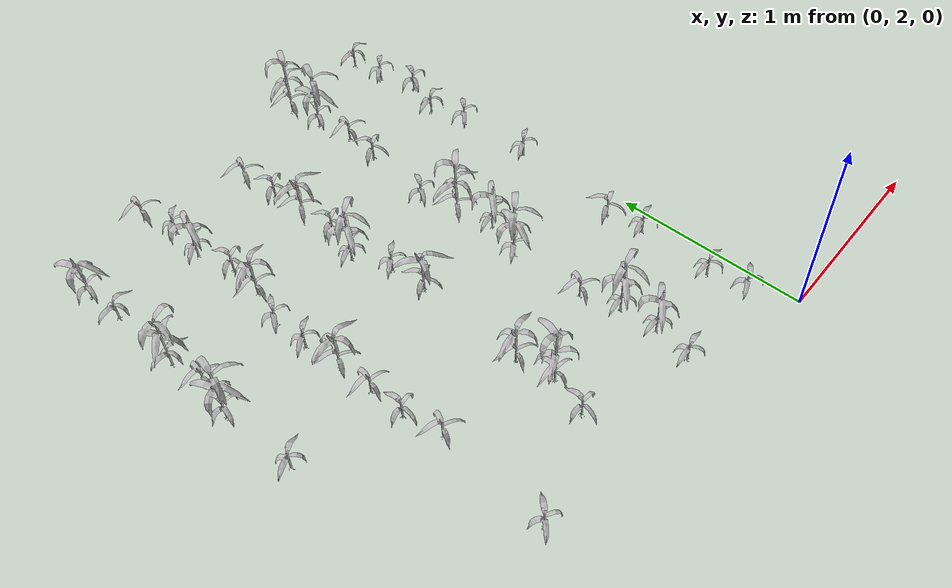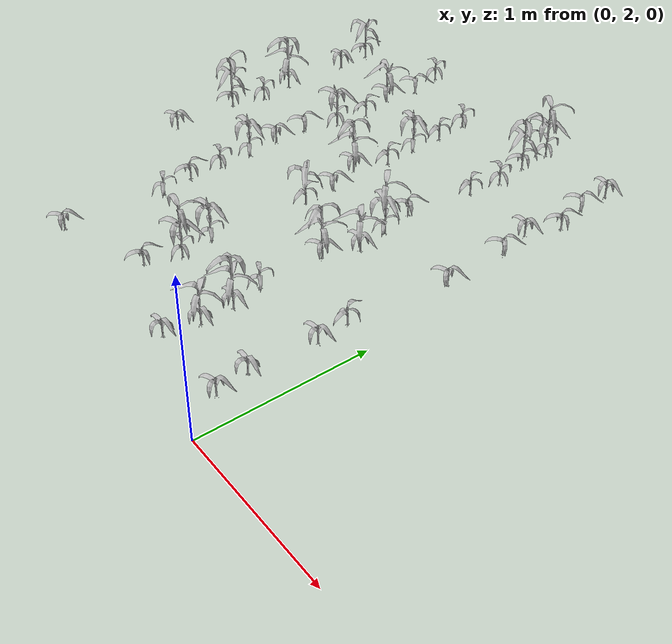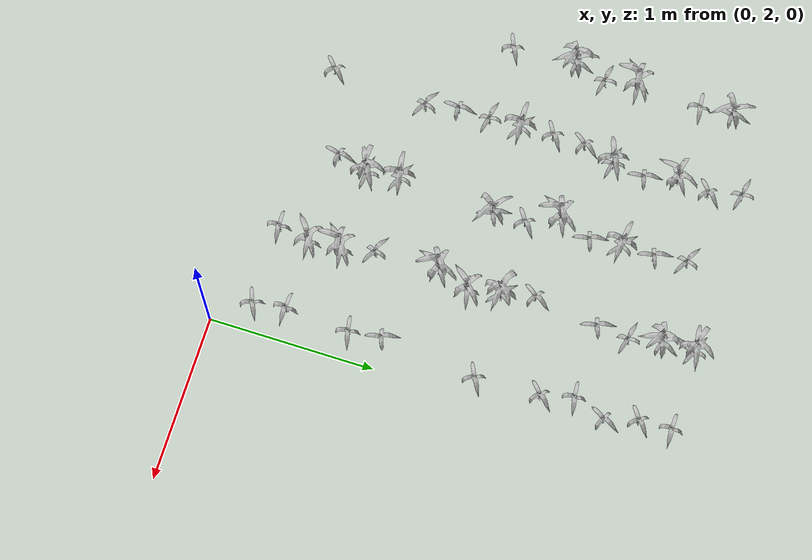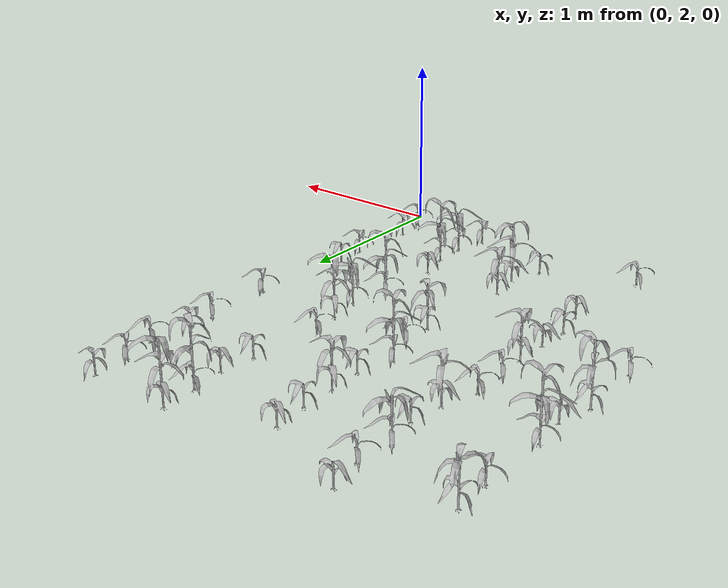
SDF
<sdf version="1.7">
 <world name="default">
  <model name="maize_-2.1164985900591105_3.1950000000000003">
   <static>1</static>
   <link name="link">
    <inertial>
     <mass>0.2</mass>
     <inertia>
      <ixx>0.166667</ixx>
      <ixy>0</ixy>
      <ixz>0</ixz>
      <iyy>0.166667</iyy>
      <iyz>0</iyz>
      <izz>0.166667</izz>
     </inertia>
    </inertial>
    <collision name="collision">
     <geometry><mesh><uri>model://corn_3/meshes/corn.dae</uri><scale>0.25 0.25 0.25</scale></mesh></geometry>
     <surface>
      <friction><ode><mu>0</mu><mu2>0</mu2></ode></friction>
      <contact><ode><kp>0</kp><kd>0</kd><max_vel>0</max_vel><min_depth>0.002</min_depth></ode></contact>
     </surface>
    </collision>
    <visual name="visual">
     <geometry><mesh><uri>model://corn_3/meshes/corn.dae</uri><scale>0.25 0.25 0.25</scale></mesh></geometry>
    </visual>
    <velocity_decay><linear>0</linear><angular>0</angular></velocity_decay>
   </link>
   <pose>-2.1165 3.195 0.05 0 -0 0.49287</pose>
  </model>
  <model name="maize_-2.1242683267938203_3.585">
   <static>1</static>
   <link name="link">
    <inertial>
     <mass>0.2</mass>
     <inertia>
      <ixx>0.166667</ixx>
      <ixy>0</ixy>
      <ixz>0</ixz>
      <iyy>0.166667</iyy>
      <iyz>0</iyz>
      <izz>0.166667</izz>
     </inertia>
    </inertial>
    <collision name="collision">
     <geometry><mesh><uri>model://corn_5/meshes/corn.dae</uri><scale>0.25 0.25 0.25</scale></mesh></geometry>
     <surface>
      <friction><ode><mu>0</mu><mu2>0</mu2></ode></friction>
      <contact><ode><kp>0</kp><kd>0</kd><max_vel>0</max_vel><min_depth>0.002</min_depth></ode></contact>
     </surface>
    </collision>
    <visual name="visual">
     <geometry><mesh><uri>model://corn_5/meshes/corn.dae</uri><scale>0.25 0.25 0.25</scale></mesh></geometry>
    </visual>
    <velocity_decay><linear>0</linear><angular>0</angular></velocity_decay>
   </link>
   <pose>-2.12427 3.585 0.05 0 -0 1.39524</pose>
  </model>
  <model name="maize_-2.0762162382212694_3.7800000000000002">
   <static>1</static>
   <link name="link">
    <inertial>
     <mass>0.2</mass>
     <inertia>
      <ixx>0.166667</ixx>
      <ixy>0</ixy>
      <ixz>0</ixz>
      <iyy>0.166667</iyy>
      <iyz>0</iyz>
      <izz>0.166667</izz>
     </inertia>
    </inertial>
    <collision name="collision">
     <geometry><mesh><uri>model://corn_3/meshes/corn.dae</uri><scale>0.25 0.25 0.25</scale></mesh></geometry>
     <surface>
      <friction><ode><mu>0</mu><mu2>0</mu2></ode></friction>
      <contact><ode><kp>0</kp><kd>0</kd><max_vel>0</max_vel><min_depth>0.002</min_depth></ode></contact>
     </surface>
    </collision>
    <visual name="visual">
     <geometry><mesh><uri>model://corn_3/meshes/corn.dae</uri><scale>0.25 0.25 0.25</scale></mesh></geometry>
    </visual>
    <velocity_decay><linear>0</linear><angular>0</angular></velocity_decay>
   </link>
   <pose>-2.07622 3.78 0.05 0 -0 2.99855</pose>
  </model>
  <model name="maize_-2.097647353204659_3.9750000000000005">
   <static>1</static>
   <link name="link">
    <inertial>
     <mass>0.2</mass>
     <inertia>
      <ixx>0.166667</ixx>
      <ixy>0</ixy>
      <ixz>0</ixz>
      <iyy>0.166667</iyy>
      <iyz>0</iyz>
      <izz>0.166667</izz>
     </inertia>
    </inertial>
    <collision name="collision">
     <geometry><mesh><uri>model://corn_5/meshes/corn.dae</uri><scale>0.25 0.25 0.25</scale></mesh></geometry>
     <surface>
      <friction><ode><mu>0</mu><mu2>0</mu2></ode></friction>
      <contact><ode><kp>0</kp><kd>0</kd><max_vel>0</max_vel><min_depth>0.002</min_depth></ode></contact>
     </surface>
    </collision>
    <visual name="visual">
     <geometry><mesh><uri>model://corn_5/meshes/corn.dae</uri><scale>0.25 0.25 0.25</scale></mesh></geometry>
    </visual>
    <velocity_decay><linear>0</linear><angular>0</angular></velocity_decay>
   </link>
   <pose>-2.09765 3.975 0.05 0 -0 0.084654</pose>
  </model>
  <model name="maize_-2.0860407775630843_4.365000000000001">
   <static>1</static>
   <link name="link">
    <inertial>
     <mass>0.2</mass>
     <inertia>
      <ixx>0.166667</ixx>
      <ixy>0</ixy>
      <ixz>0</ixz>
      <iyy>0.166667</iyy>
      <iyz>0</iyz>
      <izz>0.166667</izz>
     </inertia>
    </inertial>
    <collision name="collision">
     <geometry><mesh><uri>model://corn_3/meshes/corn.dae</uri><scale>0.25 0.25 0.25</scale></mesh></geometry>
     <surface>
      <friction><ode><mu>0</mu><mu2>0</mu2></ode></friction>
      <contact><ode><kp>0</kp><kd>0</kd><max_vel>0</max_vel><min_depth>0.002</min_depth></ode></contact>
     </surface>
    </collision>
    <visual name="visual">
     <geometry><mesh><uri>model://corn_3/meshes/corn.dae</uri><scale>0.25 0.25 0.25</scale></mesh></geometry>
    </visual>
    <velocity_decay><linear>0</linear><angular>0</angular></velocity_decay>
   </link>
   <pose>-2.08604 4.365 0.05 0 -0 0.176651</pose>
  </model>
  <model name="maize_-2.0910616269783078_4.56">
   <static>1</static>
   <link name="link">
    <inertial>
     <mass>0.2</mass>
     <inertia>
      <ixx>0.166667</ixx>
      <ixy>0</ixy>
      <ixz>0</ixz>
      <iyy>0.166667</iyy>
      <iyz>0</iyz>
      <izz>0.166667</izz>
     </inertia>
    </inertial>
    <collision name="collision">
     <geometry><mesh><uri>model://corn_4/meshes/corn.dae</uri><scale>0.25 0.25 0.25</scale></mesh></geometry>
     <surface>
      <friction><ode><mu>0</mu><mu2>0</mu2></ode></friction>
      <contact><ode><kp>0</kp><kd>0</kd><max_vel>0</max_vel><min_depth>0.002</min_depth></ode></contact>
     </surface>
    </collision>
    <visual name="visual">
     <geometry><mesh><uri>model://corn_4/meshes/corn.dae</uri><scale>0.25 0.25 0.25</scale></mesh></geometry>
    </visual>
    <velocity_decay><linear>0</linear><angular>0</angular></velocity_decay>
   </link>
   <pose>-2.09106 4.56 0.05 0 -0 1.4661</pose>
  </model>
  <model name="maize_-1.663134610293915_2.2200000000000006">
   <static>1</static>
   <link name="link">
    <inertial>
     <mass>0.2</mass>
     <inertia>
      <ixx>0.166667</ixx>
      <ixy>0</ixy>
      <ixz>0</ixz>
      <iyy>0.166667</iyy>
      <iyz>0</iyz>
      <izz>0.166667</izz>
     </inertia>
    </inertial>
    <collision name="collision">
     <geometry><mesh><uri>model://corn_3/meshes/corn.dae</uri><scale>0.25 0.25 0.25</scale></mesh></geometry>
     <surface>
      <friction><ode><mu>0</mu><mu2>0</mu2></ode></friction>
      <contact><ode><kp>0</kp><kd>0</kd><max_vel>0</max_vel><min_depth>0.002</min_depth></ode></contact>
     </surface>
    </collision>
    <visual name="visual">
     <geometry><mesh><uri>model://corn_3/meshes/corn.dae</uri><scale>0.25 0.25 0.25</scale></mesh></geometry>
    </visual>
    <velocity_decay><linear>0</linear><angular>0</angular></velocity_decay>
   </link>
   <pose>-1.66314 2.22 0.05 0 -0 0.833002</pose>
  </model>
  <model name="maize_-1.6085169609392773_2.8050000000000006">
   <static>1</static>
   <link name="link">
    <inertial>
     <mass>0.2</mass>
     <inertia>
      <ixx>0.166667</ixx>
      <ixy>0</ixy>
      <ixz>0</ixz>
      <iyy>0.166667</iyy>
      <iyz>0</iyz>
      <izz>0.166667</izz>
     </inertia>
    </inertial>
    <collision name="collision">
     <geometry><mesh><uri>model://corn_3/meshes/corn.dae</uri><scale>0.25 0.25 0.25</scale></mesh></geometry>
     <surface>
      <friction><ode><mu>0</mu><mu2>0</mu2></ode></friction>
      <contact><ode><kp>0</kp><kd>0</kd><max_vel>0</max_vel><min_depth>0.002</min_depth></ode></contact>
     </surface>
    </collision>
    <visual name="visual">
     <geometry><mesh><uri>model://corn_3/meshes/corn.dae</uri><scale>0.25 0.25 0.25</scale></mesh></geometry>
    </visual>
    <velocity_decay><linear>0</linear><angular>0</angular></velocity_decay>
   </link>
   <pose>-1.60852 2.805 0.05 0 -0 2.68107</pose>
  </model>
  <model name="maize_-1.648142192960806_3.000000000000001">
   <static>1</static>
   <link name="link">
    <inertial>
     <mass>0.2</mass>
     <inertia>
      <ixx>0.166667</ixx>
      <ixy>0</ixy>
      <ixz>0</ixz>
      <iyy>0.166667</iyy>
      <iyz>0</iyz>
      <izz>0.166667</izz>
     </inertia>
    </inertial>
    <collision name="collision">
     <geometry><mesh><uri>model://corn_3/meshes/corn.dae</uri><scale>0.25 0.25 0.25</scale></mesh></geometry>
     <surface>
      <friction><ode><mu>0</mu><mu2>0</mu2></ode></friction>
      <contact><ode><kp>0</kp><kd>0</kd><max_vel>0</max_vel><min_depth>0.002</min_depth></ode></contact>
     </surface>
    </collision>
    <visual name="visual">
     <geometry><mesh><uri>model://corn_3/meshes/corn.dae</uri><scale>0.25 0.25 0.25</scale></mesh></geometry>
    </visual>
    <velocity_decay><linear>0</linear><angular>0</angular></velocity_decay>
   </link>
   <pose>-1.64814 3 0.05 0 -0 1.54038</pose>
  </model>
  <model name="maize_-1.6412539485428397_3.1950000000000003">
   <static>1</static>
   <link name="link">
    <inertial>
     <mass>0.2</mass>
     <inertia>
      <ixx>0.166667</ixx>
      <ixy>0</ixy>
      <ixz>0</ixz>
      <iyy>0.166667</iyy>
      <iyz>0</iyz>
      <izz>0.166667</izz>
     </inertia>
    </inertial>
    <collision name="collision">
     <geometry><mesh><uri>model://corn_3/meshes/corn.dae</uri><scale>0.25 0.25 0.25</scale></mesh></geometry>
     <surface>
      <friction><ode><mu>0</mu><mu2>0</mu2></ode></friction>
      <contact><ode><kp>0</kp><kd>0</kd><max_vel>0</max_vel><min_depth>0.002</min_depth></ode></contact>
     </surface>
    </collision>
    <visual name="visual">
     <geometry><mesh><uri>model://corn_3/meshes/corn.dae</uri><scale>0.25 0.25 0.25</scale></mesh></geometry>
    </visual>
    <velocity_decay><linear>0</linear><angular>0</angular></velocity_decay>
   </link>
   <pose>-1.64125 3.195 0.05 0 -0 2.98103</pose>
  </model>
  <model name="maize_-1.6360870146533706_3.3899999999999997">
   <static>1</static>
   <link name="link">
    <inertial>
     <mass>0.2</mass>
     <inertia>
      <ixx>0.166667</ixx>
      <ixy>0</ixy>
      <ixz>0</ixz>
      <iyy>0.166667</iyy>
      <iyz>0</iyz>
      <izz>0.166667</izz>
     </inertia>
    </inertial>
    <collision name="collision">
     <geometry><mesh><uri>model://corn_4/meshes/corn.dae</uri><scale>0.25 0.25 0.25</scale></mesh></geometry>
     <surface>
      <friction><ode><mu>0</mu><mu2>0</mu2></ode></friction>
      <contact><ode><kp>0</kp><kd>0</kd><max_vel>0</max_vel><min_depth>0.002</min_depth></ode></contact>
     </surface>
    </collision>
    <visual name="visual">
     <geometry><mesh><uri>model://corn_4/meshes/corn.dae</uri><scale>0.25 0.25 0.25</scale></mesh></geometry>
    </visual>
    <velocity_decay><linear>0</linear><angular>0</angular></velocity_decay>
   </link>
   <pose>-1.63609 3.39 0.05 0 -0 2.63114</pose>
  </model>
  <model name="maize_-1.658192017509543_3.585">
   <static>1</static>
   <link name="link">
    <inertial>
     <mass>0.2</mass>
     <inertia>
      <ixx>0.166667</ixx>
      <ixy>0</ixy>
      <ixz>0</ixz>
      <iyy>0.166667</iyy>
      <iyz>0</iyz>
      <izz>0.166667</izz>
     </inertia>
    </inertial>
    <collision name="collision">
     <geometry><mesh><uri>model://corn_3/meshes/corn.dae</uri><scale>0.25 0.25 0.25</scale></mesh></geometry>
     <surface>
      <friction><ode><mu>0</mu><mu2>0</mu2></ode></friction>
      <contact><ode><kp>0</kp><kd>0</kd><max_vel>0</max_vel><min_depth>0.002</min_depth></ode></contact>
     </surface>
    </collision>
    <visual name="visual">
     <geometry><mesh><uri>model://corn_3/meshes/corn.dae</uri><scale>0.25 0.25 0.25</scale></mesh></geometry>
    </visual>
    <velocity_decay><linear>0</linear><angular>0</angular></velocity_decay>
   </link>
   <pose>-1.65819 3.585 0.05 0 -0 0.643898</pose>
  </model>
  <model name="maize_-1.6539194011626688_3.7800000000000002">
   <static>1</static>
   <link name="link">
    <inertial>
     <mass>0.2</mass>
     <inertia>
      <ixx>0.166667</ixx>
      <ixy>0</ixy>
      <ixz>0</ixz>
      <iyy>0.166667</iyy>
      <iyz>0</iyz>
      <izz>0.166667</izz>
     </inertia>
    </inertial>
    <collision name="collision">
     <geometry><mesh><uri>model://corn_3/meshes/corn.dae</uri><scale>0.25 0.25 0.25</scale></mesh></geometry>
     <surface>
      <friction><ode><mu>0</mu><mu2>0</mu2></ode></friction>
      <contact><ode><kp>0</kp><kd>0</kd><max_vel>0</max_vel><min_depth>0.002</min_depth></ode></contact>
     </surface>
    </collision>
    <visual name="visual">
     <geometry><mesh><uri>model://corn_3/meshes/corn.dae</uri><scale>0.25 0.25 0.25</scale></mesh></geometry>
    </visual>
    <velocity_decay><linear>0</linear><angular>0</angular></velocity_decay>
   </link>
   <pose>-1.65392 3.78 0.05 0 -0 1.00504</pose>
  </model>
  <model name="maize_-1.5894208410882344_3.9750000000000005">
   <static>1</static>
   <link name="link">
    <inertial>
     <mass>0.2</mass>
     <inertia>
      <ixx>0.166667</ixx>
      <ixy>0</ixy>
      <ixz>0</ixz>
      <iyy>0.166667</iyy>
      <iyz>0</iyz>
      <izz>0.166667</izz>
     </inertia>
    </inertial>
    <collision name="collision">
     <geometry><mesh><uri>model://corn_4/meshes/corn.dae</uri><scale>0.25 0.25 0.25</scale></mesh></geometry>
     <surface>
      <friction><ode><mu>0</mu><mu2>0</mu2></ode></friction>
      <contact><ode><kp>0</kp><kd>0</kd><max_vel>0</max_vel><min_depth>0.002</min_depth></ode></contact>
     </surface>
    </collision>
    <visual name="visual">
     <geometry><mesh><uri>model://corn_4/meshes/corn.dae</uri><scale>0.25 0.25 0.25</scale></mesh></geometry>
    </visual>
    <velocity_decay><linear>0</linear><angular>0</angular></velocity_decay>
   </link>
   <pose>-1.58942 3.975 0.05 0 -0 2.99807</pose>
  </model>
  <model name="maize_-1.5659149808013293_4.170000000000001">
   <static>1</static>
   <link name="link">
    <inertial>
     <mass>0.2</mass>
     <inertia>
      <ixx>0.166667</ixx>
      <ixy>0</ixy>
      <ixz>0</ixz>
      <iyy>0.166667</iyy>
      <iyz>0</iyz>
      <izz>0.166667</izz>
     </inertia>
    </inertial>
    <collision name="collision">
     <geometry><mesh><uri>model://corn_3/meshes/corn.dae</uri><scale>0.25 0.25 0.25</scale></mesh></geometry>
     <surface>
      <friction><ode><mu>0</mu><mu2>0</mu2></ode></friction>
      <contact><ode><kp>0</kp><kd>0</kd><max_vel>0</max_vel><min_depth>0.002</min_depth></ode></contact>
     </surface>
    </collision>
    <visual name="visual">
     <geometry><mesh><uri>model://corn_3/meshes/corn.dae</uri><scale>0.25 0.25 0.25</scale></mesh></geometry>
    </visual>
    <velocity_decay><linear>0</linear><angular>0</angular></velocity_decay>
   </link>
   <pose>-1.56591 4.17 0.05 0 -0 1.74223</pose>
  </model>
  <model name="maize_-1.6163731419069387_4.365000000000001">
   <static>1</static>
   <link name="link">
    <inertial>
     <mass>0.2</mass>
     <inertia>
      <ixx>0.166667</ixx>
      <ixy>0</ixy>
      <ixz>0</ixz>
      <iyy>0.166667</iyy>
      <iyz>0</iyz>
      <izz>0.166667</izz>
     </inertia>
    </inertial>
    <collision name="collision">
     <geometry><mesh><uri>model://corn_4/meshes/corn.dae</uri><scale>0.25 0.25 0.25</scale></mesh></geometry>
     <surface>
      <friction><ode><mu>0</mu><mu2>0</mu2></ode></friction>
      <contact><ode><kp>0</kp><kd>0</kd><max_vel>0</max_vel><min_depth>0.002</min_depth></ode></contact>
     </surface>
    </collision>
    <visual name="visual">
     <geometry><mesh><uri>model://corn_4/meshes/corn.dae</uri><scale>0.25 0.25 0.25</scale></mesh></geometry>
    </visual>
    <velocity_decay><linear>0</linear><angular>0</angular></velocity_decay>
   </link>
   <pose>-1.61637 4.365 0.05 0 -0 0.664564</pose>
  </model>
  <model name="maize_-1.5878479130295864_4.56">
   <static>1</static>
   <link name="link">
    <inertial>
     <mass>0.2</mass>
     <inertia>
      <ixx>0.166667</ixx>
      <ixy>0</ixy>
      <ixz>0</ixz>
      <iyy>0.166667</iyy>
      <iyz>0</iyz>
      <izz>0.166667</izz>
     </inertia>
    </inertial>
    <collision name="collision">
     <geometry><mesh><uri>model://corn_3/meshes/corn.dae</uri><scale>0.25 0.25 0.25</scale></mesh></geometry>
     <surface>
      <friction><ode><mu>0</mu><mu2>0</mu2></ode></friction>
      <contact><ode><kp>0</kp><kd>0</kd><max_vel>0</max_vel><min_depth>0.002</min_depth></ode></contact>
     </surface>
    </collision>
    <visual name="visual">
     <geometry><mesh><uri>model://corn_3/meshes/corn.dae</uri><scale>0.25 0.25 0.25</scale></mesh></geometry>
    </visual>
    <velocity_decay><linear>0</linear><angular>0</angular></velocity_decay>
   </link>
   <pose>-1.58785 4.56 0.05 0 -0 0.811355</pose>
  </model>
  <model name="maize_-1.6306166084370506_4.755">
   <static>1</static>
   <link name="link">
    <inertial>
     <mass>0.2</mass>
     <inertia>
      <ixx>0.166667</ixx>
      <ixy>0</ixy>
      <ixz>0</ixz>
      <iyy>0.166667</iyy>
      <iyz>0</iyz>
      <izz>0.166667</izz>
     </inertia>
    </inertial>
    <collision name="collision">
     <geometry><mesh><uri>model://corn_3/meshes/corn.dae</uri><scale>0.25 0.25 0.25</scale></mesh></geometry>
     <surface>
      <friction><ode><mu>0</mu><mu2>0</mu2></ode></friction>
      <contact><ode><kp>0</kp><kd>0</kd><max_vel>0</max_vel><min_depth>0.002</min_depth></ode></contact>
     </surface>
    </collision>
    <visual name="visual">
     <geometry><mesh><uri>model://corn_3/meshes/corn.dae</uri><scale>0.25 0.25 0.25</scale></mesh></geometry>
    </visual>
    <velocity_decay><linear>0</linear><angular>0</angular></velocity_decay>
   </link>
   <pose>-1.63062 4.755 0.05 0 -0 2.98924</pose>
  </model>
  <model name="maize_-1.1555213252441663_2.415">
   <static>1</static>
   <link name="link">
    <inertial>
     <mass>0.2</mass>
     <inertia>
      <ixx>0.166667</ixx>
      <ixy>0</ixy>
      <ixz>0</ixz>
      <iyy>0.166667</iyy>
      <iyz>0</iyz>
      <izz>0.166667</izz>
     </inertia>
    </inertial>
    <collision name="collision">
     <geometry><mesh><uri>model://corn_3/meshes/corn.dae</uri><scale>0.25 0.25 0.25</scale></mesh></geometry>
     <surface>
      <friction><ode><mu>0</mu><mu2>0</mu2></ode></friction>
      <contact><ode><kp>0</kp><kd>0</kd><max_vel>0</max_vel><min_depth>0.002</min_depth></ode></contact>
     </surface>
    </collision>
    <visual name="visual">
     <geometry><mesh><uri>model://corn_3/meshes/corn.dae</uri><scale>0.25 0.25 0.25</scale></mesh></geometry>
    </visual>
    <velocity_decay><linear>0</linear><angular>0</angular></velocity_decay>
   </link>
   <pose>-1.15552 2.415 0.05 0 -0 1.40679</pose>
  </model>
  <model name="maize_-1.0903606929288925_2.6100000000000003">
   <static>1</static>
   <link name="link">
    <inertial>
     <mass>0.2</mass>
     <inertia>
      <ixx>0.166667</ixx>
      <ixy>0</ixy>
      <ixz>0</ixz>
      <iyy>0.166667</iyy>
      <iyz>0</iyz>
      <izz>0.166667</izz>
     </inertia>
    </inertial>
    <collision name="collision">
     <geometry><mesh><uri>model://corn_5/meshes/corn.dae</uri><scale>0.25 0.25 0.25</scale></mesh></geometry>
     <surface>
      <friction><ode><mu>0</mu><mu2>0</mu2></ode></friction>
      <contact><ode><kp>0</kp><kd>0</kd><max_vel>0</max_vel><min_depth>0.002</min_depth></ode></contact>
     </surface>
    </collision>
    <visual name="visual">
     <geometry><mesh><uri>model://corn_5/meshes/corn.dae</uri><scale>0.25 0.25 0.25</scale></mesh></geometry>
    </visual>
    <velocity_decay><linear>0</linear><angular>0</angular></velocity_decay>
   </link>
   <pose>-1.09036 2.61 0.05 0 -0 3.08143</pose>
  </model>
  <model name="maize_-1.1209526965740497_2.8050000000000006">
   <static>1</static>
   <link name="link">
    <inertial>
     <mass>0.2</mass>
     <inertia>
      <ixx>0.166667</ixx>
      <ixy>0</ixy>
      <ixz>0</ixz>
      <iyy>0.166667</iyy>
      <iyz>0</iyz>
      <izz>0.166667</izz>
     </inertia>
    </inertial>
    <collision name="collision">
     <geometry><mesh><uri>model://corn_4/meshes/corn.dae</uri><scale>0.25 0.25 0.25</scale></mesh></geometry>
     <surface>
      <friction><ode><mu>0</mu><mu2>0</mu2></ode></friction>
      <contact><ode><kp>0</kp><kd>0</kd><max_vel>0</max_vel><min_depth>0.002</min_depth></ode></contact>
     </surface>
    </collision>
    <visual name="visual">
     <geometry><mesh><uri>model://corn_4/meshes/corn.dae</uri><scale>0.25 0.25 0.25</scale></mesh></geometry>
    </visual>
    <velocity_decay><linear>0</linear><angular>0</angular></velocity_decay>
   </link>
   <pose>-1.12095 2.805 0.05 0 -0 2.76857</pose>
  </model>
  <model name="maize_-1.0796736727257532_3.3899999999999997">
   <static>1</static>
   <link name="link">
    <inertial>
     <mass>0.2</mass>
     <inertia>
      <ixx>0.166667</ixx>
      <ixy>0</ixy>
      <ixz>0</ixz>
      <iyy>0.166667</iyy>
      <iyz>0</iyz>
      <izz>0.166667</izz>
     </inertia>
    </inertial>
    <collision name="collision">
     <geometry><mesh><uri>model://corn_4/meshes/corn.dae</uri><scale>0.25 0.25 0.25</scale></mesh></geometry>
     <surface>
      <friction><ode><mu>0</mu><mu2>0</mu2></ode></friction>
      <contact><ode><kp>0</kp><kd>0</kd><max_vel>0</max_vel><min_depth>0.002</min_depth></ode></contact>
     </surface>
    </collision>
    <visual name="visual">
     <geometry><mesh><uri>model://corn_4/meshes/corn.dae</uri><scale>0.25 0.25 0.25</scale></mesh></geometry>
    </visual>
    <velocity_decay><linear>0</linear><angular>0</angular></velocity_decay>
   </link>
   <pose>-1.07967 3.39 0.05 0 -0 1.90859</pose>
  </model>
  <model name="maize_-1.0887211426991072_3.585">
   <static>1</static>
   <link name="link">
    <inertial>
     <mass>0.2</mass>
     <inertia>
      <ixx>0.166667</ixx>
      <ixy>0</ixy>
      <ixz>0</ixz>
      <iyy>0.166667</iyy>
      <iyz>0</iyz>
      <izz>0.166667</izz>
     </inertia>
    </inertial>
    <collision name="collision">
     <geometry><mesh><uri>model://corn_3/meshes/corn.dae</uri><scale>0.25 0.25 0.25</scale></mesh></geometry>
     <surface>
      <friction><ode><mu>0</mu><mu2>0</mu2></ode></friction>
      <contact><ode><kp>0</kp><kd>0</kd><max_vel>0</max_vel><min_depth>0.002</min_depth></ode></contact>
     </surface>
    </collision>
    <visual name="visual">
     <geometry><mesh><uri>model://corn_3/meshes/corn.dae</uri><scale>0.25 0.25 0.25</scale></mesh></geometry>
    </visual>
    <velocity_decay><linear>0</linear><angular>0</angular></velocity_decay>
   </link>
   <pose>-1.08872 3.585 0.05 0 -0 0.697835</pose>
  </model>
  <model name="maize_-1.1659887740004984_3.7800000000000002">
   <static>1</static>
   <link name="link">
    <inertial>
     <mass>0.2</mass>
     <inertia>
      <ixx>0.166667</ixx>
      <ixy>0</ixy>
      <ixz>0</ixz>
      <iyy>0.166667</iyy>
      <iyz>0</iyz>
      <izz>0.166667</izz>
     </inertia>
    </inertial>
    <collision name="collision">
     <geometry><mesh><uri>model://corn_5/meshes/corn.dae</uri><scale>0.25 0.25 0.25</scale></mesh></geometry>
     <surface>
      <friction><ode><mu>0</mu><mu2>0</mu2></ode></friction>
      <contact><ode><kp>0</kp><kd>0</kd><max_vel>0</max_vel><min_depth>0.002</min_depth></ode></contact>
     </surface>
    </collision>
    <visual name="visual">
     <geometry><mesh><uri>model://corn_5/meshes/corn.dae</uri><scale>0.25 0.25 0.25</scale></mesh></geometry>
    </visual>
    <velocity_decay><linear>0</linear><angular>0</angular></velocity_decay>
   </link>
   <pose>-1.16599 3.78 0.05 0 -0 0.441565</pose>
  </model>
  <model name="maize_-1.101138651092926_3.9750000000000005">
   <static>1</static>
   <link name="link">
    <inertial>
     <mass>0.2</mass>
     <inertia>
      <ixx>0.166667</ixx>
      <ixy>0</ixy>
      <ixz>0</ixz>
      <iyy>0.166667</iyy>
      <iyz>0</iyz>
      <izz>0.166667</izz>
     </inertia>
    </inertial>
    <collision name="collision">
     <geometry><mesh><uri>model://corn_3/meshes/corn.dae</uri><scale>0.25 0.25 0.25</scale></mesh></geometry>
     <surface>
      <friction><ode><mu>0</mu><mu2>0</mu2></ode></friction>
      <contact><ode><kp>0</kp><kd>0</kd><max_vel>0</max_vel><min_depth>0.002</min_depth></ode></contact>
     </surface>
    </collision>
    <visual name="visual">
     <geometry><mesh><uri>model://corn_3/meshes/corn.dae</uri><scale>0.25 0.25 0.25</scale></mesh></geometry>
    </visual>
    <velocity_decay><linear>0</linear><angular>0</angular></velocity_decay>
   </link>
   <pose>-1.10114 3.975 0.05 0 -0 1.82091</pose>
  </model>
  <model name="maize_-1.1143127079378858_4.170000000000001">
   <static>1</static>
   <link name="link">
    <inertial>
     <mass>0.2</mass>
     <inertia>
      <ixx>0.166667</ixx>
      <ixy>0</ixy>
      <ixz>0</ixz>
      <iyy>0.166667</iyy>
      <iyz>0</iyz>
      <izz>0.166667</izz>
     </inertia>
    </inertial>
    <collision name="collision">
     <geometry><mesh><uri>model://corn_4/meshes/corn.dae</uri><scale>0.25 0.25 0.25</scale></mesh></geometry>
     <surface>
      <friction><ode><mu>0</mu><mu2>0</mu2></ode></friction>
      <contact><ode><kp>0</kp><kd>0</kd><max_vel>0</max_vel><min_depth>0.002</min_depth></ode></contact>
     </surface>
    </collision>
    <visual name="visual">
     <geometry><mesh><uri>model://corn_4/meshes/corn.dae</uri><scale>0.25 0.25 0.25</scale></mesh></geometry>
    </visual>
    <velocity_decay><linear>0</linear><angular>0</angular></velocity_decay>
   </link>
   <pose>-1.11431 4.17 0.05 0 -0 2.48841</pose>
  </model>
  <model name="maize_-1.1170687580673233_4.365000000000001">
   <static>1</static>
   <link name="link">
    <inertial>
     <mass>0.2</mass>
     <inertia>
      <ixx>0.166667</ixx>
      <ixy>0</ixy>
      <ixz>0</ixz>
      <iyy>0.166667</iyy>
      <iyz>0</iyz>
      <izz>0.166667</izz>
     </inertia>
    </inertial>
    <collision name="collision">
     <geometry><mesh><uri>model://corn_3/meshes/corn.dae</uri><scale>0.25 0.25 0.25</scale></mesh></geometry>
     <surface>
      <friction><ode><mu>0</mu><mu2>0</mu2></ode></friction>
      <contact><ode><kp>0</kp><kd>0</kd><max_vel>0</max_vel><min_depth>0.002</min_depth></ode></contact>
     </surface>
    </collision>
    <visual name="visual">
     <geometry><mesh><uri>model://corn_3/meshes/corn.dae</uri><scale>0.25 0.25 0.25</scale></mesh></geometry>
    </visual>
    <velocity_decay><linear>0</linear><angular>0</angular></velocity_decay>
   </link>
   <pose>-1.11707 4.365 0.05 0 -0 1.84388</pose>
  </model>
  <model name="maize_-1.1387523661591759_4.56">
   <static>1</static>
   <link name="link">
    <inertial>
     <mass>0.2</mass>
     <inertia>
      <ixx>0.166667</ixx>
      <ixy>0</ixy>
      <ixz>0</ixz>
      <iyy>0.166667</iyy>
      <iyz>0</iyz>
      <izz>0.166667</izz>
     </inertia>
    </inertial>
    <collision name="collision">
     <geometry><mesh><uri>model://corn_3/meshes/corn.dae</uri><scale>0.25 0.25 0.25</scale></mesh></geometry>
     <surface>
      <friction><ode><mu>0</mu><mu2>0</mu2></ode></friction>
      <contact><ode><kp>0</kp><kd>0</kd><max_vel>0</max_vel><min_depth>0.002</min_depth></ode></contact>
     </surface>
    </collision>
    <visual name="visual">
     <geometry><mesh><uri>model://corn_3/meshes/corn.dae</uri><scale>0.25 0.25 0.25</scale></mesh></geometry>
    </visual>
    <velocity_decay><linear>0</linear><angular>0</angular></velocity_decay>
   </link>
   <pose>-1.13875 4.56 0.05 0 -0 2.70622</pose>
  </model>
  <model name="maize_-0.6314867450629807_2.2200000000000006">
   <static>1</static>
   <link name="link">
    <inertial>
     <mass>0.2</mass>
     <inertia>
      <ixx>0.166667</ixx>
      <ixy>0</ixy>
      <ixz>0</ixz>
      <iyy>0.166667</iyy>
      <iyz>0</iyz>
      <izz>0.166667</izz>
     </inertia>
    </inertial>
    <collision name="collision">
     <geometry><mesh><uri>model://corn_3/meshes/corn.dae</uri><scale>0.25 0.25 0.25</scale></mesh></geometry>
     <surface>
      <friction><ode><mu>0</mu><mu2>0</mu2></ode></friction>
      <contact><ode><kp>0</kp><kd>0</kd><max_vel>0</max_vel><min_depth>0.002</min_depth></ode></contact>
     </surface>
    </collision>
    <visual name="visual">
     <geometry><mesh><uri>model://corn_3/meshes/corn.dae</uri><scale>0.25 0.25 0.25</scale></mesh></geometry>
    </visual>
    <velocity_decay><linear>0</linear><angular>0</angular></velocity_decay>
   </link>
   <pose>-0.631487 2.22 0.05 0 -0 0.14985</pose>
  </model>
  <model name="maize_-0.5920018235089026_2.415">
   <static>1</static>
   <link name="link">
    <inertial>
     <mass>0.2</mass>
     <inertia>
      <ixx>0.166667</ixx>
      <ixy>0</ixy>
      <ixz>0</ixz>
      <iyy>0.166667</iyy>
      <iyz>0</iyz>
      <izz>0.166667</izz>
     </inertia>
    </inertial>
    <collision name="collision">
     <geometry><mesh><uri>model://corn_4/meshes/corn.dae</uri><scale>0.25 0.25 0.25</scale></mesh></geometry>
     <surface>
      <friction><ode><mu>0</mu><mu2>0</mu2></ode></friction>
      <contact><ode><kp>0</kp><kd>0</kd><max_vel>0</max_vel><min_depth>0.002</min_depth></ode></contact>
     </surface>
    </collision>
    <visual name="visual">
     <geometry><mesh><uri>model://corn_4/meshes/corn.dae</uri><scale>0.25 0.25 0.25</scale></mesh></geometry>
    </visual>
    <velocity_decay><linear>0</linear><angular>0</angular></velocity_decay>
   </link>
   <pose>-0.592002 2.415 0.05 0 -0 0.061608</pose>
  </model>
  <model name="maize_-0.5978591052711811_2.6100000000000003">
   <static>1</static>
   <link name="link">
    <inertial>
     <mass>0.2</mass>
     <inertia>
      <ixx>0.166667</ixx>
      <ixy>0</ixy>
      <ixz>0</ixz>
      <iyy>0.166667</iyy>
      <iyz>0</iyz>
      <izz>0.166667</izz>
     </inertia>
    </inertial>
    <collision name="collision">
     <geometry><mesh><uri>model://corn_5/meshes/corn.dae</uri><scale>0.25 0.25 0.25</scale></mesh></geometry>
     <surface>
      <friction><ode><mu>0</mu><mu2>0</mu2></ode></friction>
      <contact><ode><kp>0</kp><kd>0</kd><max_vel>0</max_vel><min_depth>0.002</min_depth></ode></contact>
     </surface>
    </collision>
    <visual name="visual">
     <geometry><mesh><uri>model://corn_5/meshes/corn.dae</uri><scale>0.25 0.25 0.25</scale></mesh></geometry>
    </visual>
    <velocity_decay><linear>0</linear><angular>0</angular></velocity_decay>
   </link>
   <pose>-0.597859 2.61 0.05 0 -0 0.148231</pose>
  </model>
  <model name="maize_-0.6501387656907339_2.8050000000000006">
   <static>1</static>
   <link name="link">
    <inertial>
     <mass>0.2</mass>
     <inertia>
      <ixx>0.166667</ixx>
      <ixy>0</ixy>
      <ixz>0</ixz>
      <iyy>0.166667</iyy>
      <iyz>0</iyz>
      <izz>0.166667</izz>
     </inertia>
    </inertial>
    <collision name="collision">
     <geometry><mesh><uri>model://corn_3/meshes/corn.dae</uri><scale>0.25 0.25 0.25</scale></mesh></geometry>
     <surface>
      <friction><ode><mu>0</mu><mu2>0</mu2></ode></friction>
      <contact><ode><kp>0</kp><kd>0</kd><max_vel>0</max_vel><min_depth>0.002</min_depth></ode></contact>
     </surface>
    </collision>
    <visual name="visual">
     <geometry><mesh><uri>model://corn_3/meshes/corn.dae</uri><scale>0.25 0.25 0.25</scale></mesh></geometry>
    </visual>
    <velocity_decay><linear>0</linear><angular>0</angular></velocity_decay>
   </link>
   <pose>-0.650139 2.805 0.05 0 -0 2.70994</pose>
  </model>
  <model name="maize_-0.6537903981904519_3.1950000000000003">
   <static>1</static>
   <link name="link">
    <inertial>
     <mass>0.2</mass>
     <inertia>
      <ixx>0.166667</ixx>
      <ixy>0</ixy>
      <ixz>0</ixz>
      <iyy>0.166667</iyy>
      <iyz>0</iyz>
      <izz>0.166667</izz>
     </inertia>
    </inertial>
    <collision name="collision">
     <geometry><mesh><uri>model://corn_5/meshes/corn.dae</uri><scale>0.25 0.25 0.25</scale></mesh></geometry>
     <surface>
      <friction><ode><mu>0</mu><mu2>0</mu2></ode></friction>
      <contact><ode><kp>0</kp><kd>0</kd><max_vel>0</max_vel><min_depth>0.002</min_depth></ode></contact>
     </surface>
    </collision>
    <visual name="visual">
     <geometry><mesh><uri>model://corn_5/meshes/corn.dae</uri><scale>0.25 0.25 0.25</scale></mesh></geometry>
    </visual>
    <velocity_decay><linear>0</linear><angular>0</angular></velocity_decay>
   </link>
   <pose>-0.65379 3.195 0.05 0 -0 0.645604</pose>
  </model>
  <model name="maize_-0.5839129292076466_3.3899999999999997">
   <static>1</static>
   <link name="link">
    <inertial>
     <mass>0.2</mass>
     <inertia>
      <ixx>0.166667</ixx>
      <ixy>0</ixy>
      <ixz>0</ixz>
      <iyy>0.166667</iyy>
      <iyz>0</iyz>
      <izz>0.166667</izz>
     </inertia>
    </inertial>
    <collision name="collision">
     <geometry><mesh><uri>model://corn_4/meshes/corn.dae</uri><scale>0.25 0.25 0.25</scale></mesh></geometry>
     <surface>
      <friction><ode><mu>0</mu><mu2>0</mu2></ode></friction>
      <contact><ode><kp>0</kp><kd>0</kd><max_vel>0</max_vel><min_depth>0.002</min_depth></ode></contact>
     </surface>
    </collision>
    <visual name="visual">
     <geometry><mesh><uri>model://corn_4/meshes/corn.dae</uri><scale>0.25 0.25 0.25</scale></mesh></geometry>
    </visual>
    <velocity_decay><linear>0</linear><angular>0</angular></velocity_decay>
   </link>
   <pose>-0.583913 3.39 0.05 0 -0 0.234294</pose>
  </model>
  <model name="maize_-0.621016667286145_3.585">
   <static>1</static>
   <link name="link">
    <inertial>
     <mass>0.2</mass>
     <inertia>
      <ixx>0.166667</ixx>
      <ixy>0</ixy>
      <ixz>0</ixz>
      <iyy>0.166667</iyy>
      <iyz>0</iyz>
      <izz>0.166667</izz>
     </inertia>
    </inertial>
    <collision name="collision">
     <geometry><mesh><uri>model://corn_5/meshes/corn.dae</uri><scale>0.25 0.25 0.25</scale></mesh></geometry>
     <surface>
      <friction><ode><mu>0</mu><mu2>0</mu2></ode></friction>
      <contact><ode><kp>0</kp><kd>0</kd><max_vel>0</max_vel><min_depth>0.002</min_depth></ode></contact>
     </surface>
    </collision>
    <visual name="visual">
     <geometry><mesh><uri>model://corn_5/meshes/corn.dae</uri><scale>0.25 0.25 0.25</scale></mesh></geometry>
    </visual>
    <velocity_decay><linear>0</linear><angular>0</angular></velocity_decay>
   </link>
   <pose>-0.621017 3.585 0.05 0 -0 2.42292</pose>
  </model>
  <model name="maize_-0.6702341685313563_3.7800000000000002">
   <static>1</static>
   <link name="link">
    <inertial>
     <mass>0.2</mass>
     <inertia>
      <ixx>0.166667</ixx>
      <ixy>0</ixy>
      <ixz>0</ixz>
      <iyy>0.166667</iyy>
      <iyz>0</iyz>
      <izz>0.166667</izz>
     </inertia>
    </inertial>
    <collision name="collision">
     <geometry><mesh><uri>model://corn_3/meshes/corn.dae</uri><scale>0.25 0.25 0.25</scale></mesh></geometry>
     <surface>
      <friction><ode><mu>0</mu><mu2>0</mu2></ode></friction>
      <contact><ode><kp>0</kp><kd>0</kd><max_vel>0</max_vel><min_depth>0.002</min_depth></ode></contact>
     </surface>
    </collision>
    <visual name="visual">
     <geometry><mesh><uri>model://corn_3/meshes/corn.dae</uri><scale>0.25 0.25 0.25</scale></mesh></geometry>
    </visual>
    <velocity_decay><linear>0</linear><angular>0</angular></velocity_decay>
   </link>
   <pose>-0.670234 3.78 0.05 0 -0 1.04523</pose>
  </model>
  <model name="maize_-0.6094295401622659_4.170000000000001">
   <static>1</static>
   <link name="link">
    <inertial>
     <mass>0.2</mass>
     <inertia>
      <ixx>0.166667</ixx>
      <ixy>0</ixy>
      <ixz>0</ixz>
      <iyy>0.166667</iyy>
      <iyz>0</iyz>
      <izz>0.166667</izz>
     </inertia>
    </inertial>
    <collision name="collision">
     <geometry><mesh><uri>model://corn_3/meshes/corn.dae</uri><scale>0.25 0.25 0.25</scale></mesh></geometry>
     <surface>
      <friction><ode><mu>0</mu><mu2>0</mu2></ode></friction>
      <contact><ode><kp>0</kp><kd>0</kd><max_vel>0</max_vel><min_depth>0.002</min_depth></ode></contact>
     </surface>
    </collision>
    <visual name="visual">
     <geometry><mesh><uri>model://corn_3/meshes/corn.dae</uri><scale>0.25 0.25 0.25</scale></mesh></geometry>
    </visual>
    <velocity_decay><linear>0</linear><angular>0</angular></velocity_decay>
   </link>
   <pose>-0.60943 4.17 0.05 0 -0 1.86029</pose>
  </model>
  <model name="maize_-0.5861226633077794_4.365000000000001">
   <static>1</static>
   <link name="link">
    <inertial>
     <mass>0.2</mass>
     <inertia>
      <ixx>0.166667</ixx>
      <ixy>0</ixy>
      <ixz>0</ixz>
      <iyy>0.166667</iyy>
      <iyz>0</iyz>
      <izz>0.166667</izz>
     </inertia>
    </inertial>
    <collision name="collision">
     <geometry><mesh><uri>model://corn_3/meshes/corn.dae</uri><scale>0.25 0.25 0.25</scale></mesh></geometry>
     <surface>
      <friction><ode><mu>0</mu><mu2>0</mu2></ode></friction>
      <contact><ode><kp>0</kp><kd>0</kd><max_vel>0</max_vel><min_depth>0.002</min_depth></ode></contact>
     </surface>
    </collision>
    <visual name="visual">
     <geometry><mesh><uri>model://corn_3/meshes/corn.dae</uri><scale>0.25 0.25 0.25</scale></mesh></geometry>
    </visual>
    <velocity_decay><linear>0</linear><angular>0</angular></velocity_decay>
   </link>
   <pose>-0.586123 4.365 0.05 0 -0 2.96366</pose>
  </model>
  <model name="maize_-0.6168767127016292_4.56">
   <static>1</static>
   <link name="link">
    <inertial>
     <mass>0.2</mass>
     <inertia>
      <ixx>0.166667</ixx>
      <ixy>0</ixy>
      <ixz>0</ixz>
      <iyy>0.166667</iyy>
      <iyz>0</iyz>
      <izz>0.166667</izz>
     </inertia>
    </inertial>
    <collision name="collision">
     <geometry><mesh><uri>model://corn_5/meshes/corn.dae</uri><scale>0.25 0.25 0.25</scale></mesh></geometry>
     <surface>
      <friction><ode><mu>0</mu><mu2>0</mu2></ode></friction>
      <contact><ode><kp>0</kp><kd>0</kd><max_vel>0</max_vel><min_depth>0.002</min_depth></ode></contact>
     </surface>
    </collision>
    <visual name="visual">
     <geometry><mesh><uri>model://corn_5/meshes/corn.dae</uri><scale>0.25 0.25 0.25</scale></mesh></geometry>
    </visual>
    <velocity_decay><linear>0</linear><angular>0</angular></velocity_decay>
   </link>
   <pose>-0.616877 4.56 0.05 0 -0 1.18661</pose>
  </model>
  <model name="maize_-0.6294401078363845_4.755">
   <static>1</static>
   <link name="link">
    <inertial>
     <mass>0.2</mass>
     <inertia>
      <ixx>0.166667</ixx>
      <ixy>0</ixy>
      <ixz>0</ixz>
      <iyy>0.166667</iyy>
      <iyz>0</iyz>
      <izz>0.166667</izz>
     </inertia>
    </inertial>
    <collision name="collision">
     <geometry><mesh><uri>model://corn_5/meshes/corn.dae</uri><scale>0.25 0.25 0.25</scale></mesh></geometry>
     <surface>
      <friction><ode><mu>0</mu><mu2>0</mu2></ode></friction>
      <contact><ode><kp>0</kp><kd>0</kd><max_vel>0</max_vel><min_depth>0.002</min_depth></ode></contact>
     </surface>
    </collision>
    <visual name="visual">
     <geometry><mesh><uri>model://corn_5/meshes/corn.dae</uri><scale>0.25 0.25 0.25</scale></mesh></geometry>
    </visual>
    <velocity_decay><linear>0</linear><angular>0</angular></velocity_decay>
   </link>
   <pose>-0.62944 4.755 0.05 0 -0 2.77423</pose>
  </model>
  <model name="maize_-0.13999590263379155_2.2200000000000006">
   <static>1</static>
   <link name="link">
    <inertial>
     <mass>0.2</mass>
     <inertia>
      <ixx>0.166667</ixx>
      <ixy>0</ixy>
      <ixz>0</ixz>
      <iyy>0.166667</iyy>
      <iyz>0</iyz>
      <izz>0.166667</izz>
     </inertia>
    </inertial>
    <collision name="collision">
     <geometry><mesh><uri>model://corn_3/meshes/corn.dae</uri><scale>0.25 0.25 0.25</scale></mesh></geometry>
     <surface>
      <friction><ode><mu>0</mu><mu2>0</mu2></ode></friction>
      <contact><ode><kp>0</kp><kd>0</kd><max_vel>0</max_vel><min_depth>0.002</min_depth></ode></contact>
     </surface>
    </collision>
    <visual name="visual">
     <geometry><mesh><uri>model://corn_3/meshes/corn.dae</uri><scale>0.25 0.25 0.25</scale></mesh></geometry>
    </visual>
    <velocity_decay><linear>0</linear><angular>0</angular></velocity_decay>
   </link>
   <pose>-0.139996 2.22 0.05 0 -0 0.479383</pose>
  </model>
  <model name="maize_-0.16866991556872285_2.415">
   <static>1</static>
   <link name="link">
    <inertial>
     <mass>0.2</mass>
     <inertia>
      <ixx>0.166667</ixx>
      <ixy>0</ixy>
      <ixz>0</ixz>
      <iyy>0.166667</iyy>
      <iyz>0</iyz>
      <izz>0.166667</izz>
     </inertia>
    </inertial>
    <collision name="collision">
     <geometry><mesh><uri>model://corn_3/meshes/corn.dae</uri><scale>0.25 0.25 0.25</scale></mesh></geometry>
     <surface>
      <friction><ode><mu>0</mu><mu2>0</mu2></ode></friction>
      <contact><ode><kp>0</kp><kd>0</kd><max_vel>0</max_vel><min_depth>0.002</min_depth></ode></contact>
     </surface>
    </collision>
    <visual name="visual">
     <geometry><mesh><uri>model://corn_3/meshes/corn.dae</uri><scale>0.25 0.25 0.25</scale></mesh></geometry>
    </visual>
    <velocity_decay><linear>0</linear><angular>0</angular></velocity_decay>
   </link>
   <pose>-0.16867 2.415 0.05 0 -0 0.032771</pose>
  </model>
  <model name="maize_-0.14332085875326894_2.8050000000000006">
   <static>1</static>
   <link name="link">
    <inertial>
     <mass>0.2</mass>
     <inertia>
      <ixx>0.166667</ixx>
      <ixy>0</ixy>
      <ixz>0</ixz>
      <iyy>0.166667</iyy>
      <iyz>0</iyz>
      <izz>0.166667</izz>
     </inertia>
    </inertial>
    <collision name="collision">
     <geometry><mesh><uri>model://corn_3/meshes/corn.dae</uri><scale>0.25 0.25 0.25</scale></mesh></geometry>
     <surface>
      <friction><ode><mu>0</mu><mu2>0</mu2></ode></friction>
      <contact><ode><kp>0</kp><kd>0</kd><max_vel>0</max_vel><min_depth>0.002</min_depth></ode></contact>
     </surface>
    </collision>
    <visual name="visual">
     <geometry><mesh><uri>model://corn_3/meshes/corn.dae</uri><scale>0.25 0.25 0.25</scale></mesh></geometry>
    </visual>
    <velocity_decay><linear>0</linear><angular>0</angular></velocity_decay>
   </link>
   <pose>-0.143321 2.805 0.05 0 -0 0.280182</pose>
  </model>
  <model name="maize_-0.16656470564975412_3.000000000000001">
   <static>1</static>
   <link name="link">
    <inertial>
     <mass>0.2</mass>
     <inertia>
      <ixx>0.166667</ixx>
      <ixy>0</ixy>
      <ixz>0</ixz>
      <iyy>0.166667</iyy>
      <iyz>0</iyz>
      <izz>0.166667</izz>
     </inertia>
    </inertial>
    <collision name="collision">
     <geometry><mesh><uri>model://corn_3/meshes/corn.dae</uri><scale>0.25 0.25 0.25</scale></mesh></geometry>
     <surface>
      <friction><ode><mu>0</mu><mu2>0</mu2></ode></friction>
      <contact><ode><kp>0</kp><kd>0</kd><max_vel>0</max_vel><min_depth>0.002</min_depth></ode></contact>
     </surface>
    </collision>
    <visual name="visual">
     <geometry><mesh><uri>model://corn_3/meshes/corn.dae</uri><scale>0.25 0.25 0.25</scale></mesh></geometry>
    </visual>
    <velocity_decay><linear>0</linear><angular>0</angular></velocity_decay>
   </link>
   <pose>-0.166565 3 0.05 0 -0 1.85434</pose>
  </model>
  <model name="maize_-0.0988325057247072_3.585">
   <static>1</static>
   <link name="link">
    <inertial>
     <mass>0.2</mass>
     <inertia>
      <ixx>0.166667</ixx>
      <ixy>0</ixy>
      <ixz>0</ixz>
      <iyy>0.166667</iyy>
      <iyz>0</iyz>
      <izz>0.166667</izz>
     </inertia>
    </inertial>
    <collision name="collision">
     <geometry><mesh><uri>model://corn_3/meshes/corn.dae</uri><scale>0.25 0.25 0.25</scale></mesh></geometry>
     <surface>
      <friction><ode><mu>0</mu><mu2>0</mu2></ode></friction>
      <contact><ode><kp>0</kp><kd>0</kd><max_vel>0</max_vel><min_depth>0.002</min_depth></ode></contact>
     </surface>
    </collision>
    <visual name="visual">
     <geometry><mesh><uri>model://corn_3/meshes/corn.dae</uri><scale>0.25 0.25 0.25</scale></mesh></geometry>
    </visual>
    <velocity_decay><linear>0</linear><angular>0</angular></velocity_decay>
   </link>
   <pose>-0.098833 3.585 0.05 0 -0 0.541879</pose>
  </model>
  <model name="maize_-0.11523021433671189_3.9750000000000005">
   <static>1</static>
   <link name="link">
    <inertial>
     <mass>0.2</mass>
     <inertia>
      <ixx>0.166667</ixx>
      <ixy>0</ixy>
      <ixz>0</ixz>
      <iyy>0.166667</iyy>
      <iyz>0</iyz>
      <izz>0.166667</izz>
     </inertia>
    </inertial>
    <collision name="collision">
     <geometry><mesh><uri>model://corn_3/meshes/corn.dae</uri><scale>0.25 0.25 0.25</scale></mesh></geometry>
     <surface>
      <friction><ode><mu>0</mu><mu2>0</mu2></ode></friction>
      <contact><ode><kp>0</kp><kd>0</kd><max_vel>0</max_vel><min_depth>0.002</min_depth></ode></contact>
     </surface>
    </collision>
    <visual name="visual">
     <geometry><mesh><uri>model://corn_3/meshes/corn.dae</uri><scale>0.25 0.25 0.25</scale></mesh></geometry>
    </visual>
    <velocity_decay><linear>0</linear><angular>0</angular></velocity_decay>
   </link>
   <pose>-0.11523 3.975 0.05 0 -0 0.84294</pose>
  </model>
  <model name="maize_-0.16198255649074533_4.170000000000001">
   <static>1</static>
   <link name="link">
    <inertial>
     <mass>0.2</mass>
     <inertia>
      <ixx>0.166667</ixx>
      <ixy>0</ixy>
      <ixz>0</ixz>
      <iyy>0.166667</iyy>
      <iyz>0</iyz>
      <izz>0.166667</izz>
     </inertia>
    </inertial>
    <collision name="collision">
     <geometry><mesh><uri>model://corn_3/meshes/corn.dae</uri><scale>0.25 0.25 0.25</scale></mesh></geometry>
     <surface>
      <friction><ode><mu>0</mu><mu2>0</mu2></ode></friction>
      <contact><ode><kp>0</kp><kd>0</kd><max_vel>0</max_vel><min_depth>0.002</min_depth></ode></contact>
     </surface>
    </collision>
    <visual name="visual">
     <geometry><mesh><uri>model://corn_3/meshes/corn.dae</uri><scale>0.25 0.25 0.25</scale></mesh></geometry>
    </visual>
    <velocity_decay><linear>0</linear><angular>0</angular></velocity_decay>
   </link>
   <pose>-0.161983 4.17 0.05 0 -0 0.199625</pose>
  </model>
  <model name="maize_-0.0879544403109894_4.365000000000001">
   <static>1</static>
   <link name="link">
    <inertial>
     <mass>0.2</mass>
     <inertia>
      <ixx>0.166667</ixx>
      <ixy>0</ixy>
      <ixz>0</ixz>
      <iyy>0.166667</iyy>
      <iyz>0</iyz>
      <izz>0.166667</izz>
     </inertia>
    </inertial>
    <collision name="collision">
     <geometry><mesh><uri>model://corn_3/meshes/corn.dae</uri><scale>0.25 0.25 0.25</scale></mesh></geometry>
     <surface>
      <friction><ode><mu>0</mu><mu2>0</mu2></ode></friction>
      <contact><ode><kp>0</kp><kd>0</kd><max_vel>0</max_vel><min_depth>0.002</min_depth></ode></contact>
     </surface>
    </collision>
    <visual name="visual">
     <geometry><mesh><uri>model://corn_3/meshes/corn.dae</uri><scale>0.25 0.25 0.25</scale></mesh></geometry>
    </visual>
    <velocity_decay><linear>0</linear><angular>0</angular></velocity_decay>
   </link>
   <pose>-0.087954 4.365 0.05 0 -0 1.13209</pose>
  </model>
  <model name="maize_-0.14343594103626495_4.56">
   <static>1</static>
   <link name="link">
    <inertial>
     <mass>0.2</mass>
     <inertia>
      <ixx>0.166667</ixx>
      <ixy>0</ixy>
      <ixz>0</ixz>
      <iyy>0.166667</iyy>
      <iyz>0</iyz>
      <izz>0.166667</izz>
     </inertia>
    </inertial>
    <collision name="collision">
     <geometry><mesh><uri>model://corn_3/meshes/corn.dae</uri><scale>0.25 0.25 0.25</scale></mesh></geometry>
     <surface>
      <friction><ode><mu>0</mu><mu2>0</mu2></ode></friction>
      <contact><ode><kp>0</kp><kd>0</kd><max_vel>0</max_vel><min_depth>0.002</min_depth></ode></contact>
     </surface>
    </collision>
    <visual name="visual">
     <geometry><mesh><uri>model://corn_3/meshes/corn.dae</uri><scale>0.25 0.25 0.25</scale></mesh></geometry>
    </visual>
    <velocity_decay><linear>0</linear><angular>0</angular></velocity_decay>
   </link>
   <pose>-0.143436 4.56 0.05 0 -0 0.721412</pose>
  </model>
  <model name="maize_-0.15021974725281007_4.755">
   <static>1</static>
   <link name="link">
    <inertial>
     <mass>0.2</mass>
     <inertia>
      <ixx>0.166667</ixx>
      <ixy>0</ixy>
      <ixz>0</ixz>
      <iyy>0.166667</iyy>
      <iyz>0</iyz>
      <izz>0.166667</izz>
     </inertia>
    </inertial>
    <collision name="collision">
     <geometry><mesh><uri>model://corn_3/meshes/corn.dae</uri><scale>0.25 0.25 0.25</scale></mesh></geometry>
     <surface>
      <friction><ode><mu>0</mu><mu2>0</mu2></ode></friction>
      <contact><ode><kp>0</kp><kd>0</kd><max_vel>0</max_vel><min_depth>0.002</min_depth></ode></contact>
     </surface>
    </collision>
    <visual name="visual">
     <geometry><mesh><uri>model://corn_3/meshes/corn.dae</uri><scale>0.25 0.25 0.25</scale></mesh></geometry>
    </visual>
    <velocity_decay><linear>0</linear><angular>0</angular></velocity_decay>
   </link>
   <pose>-0.15022 4.755 0.05 0 -0 0.074744</pose>
  </model>
 </world>
</sdf>
